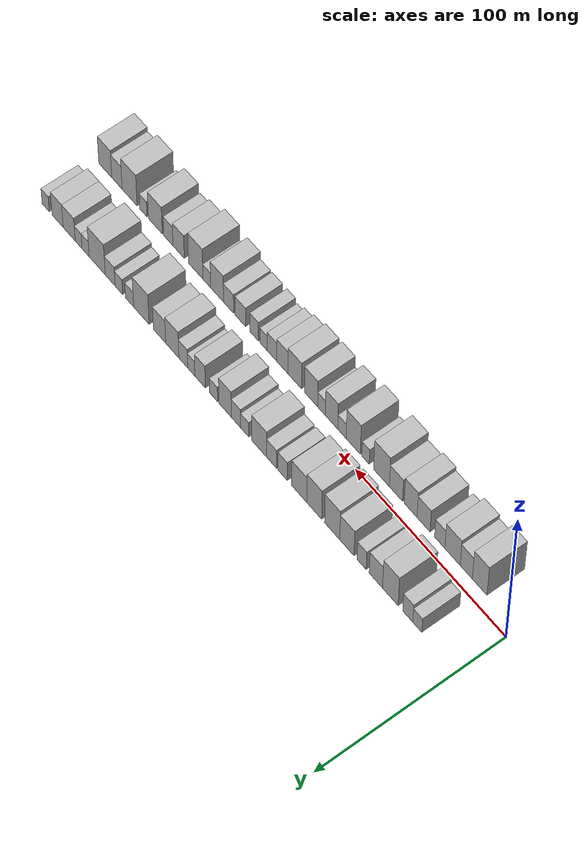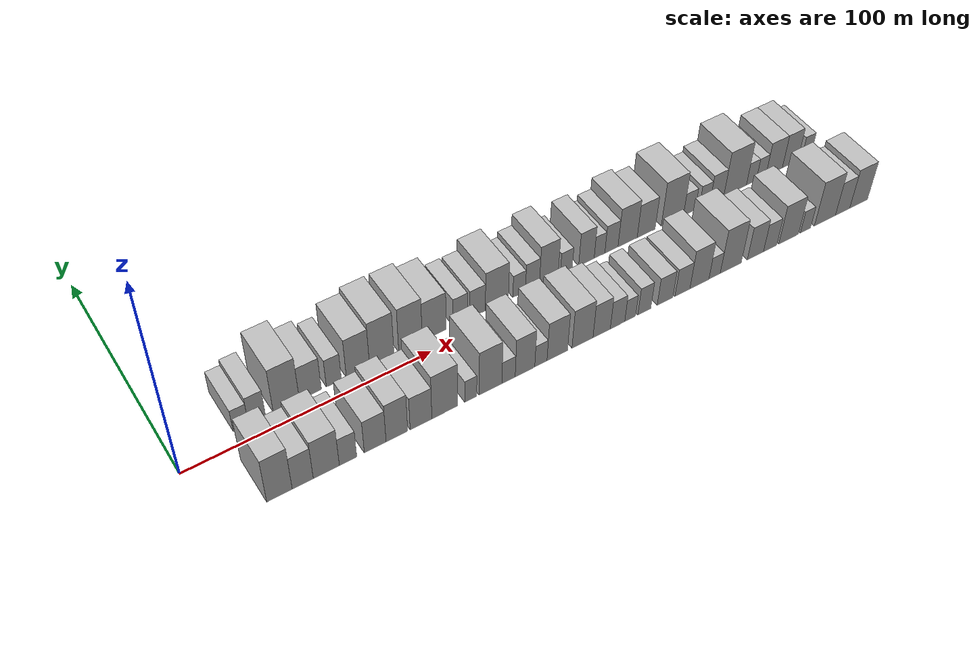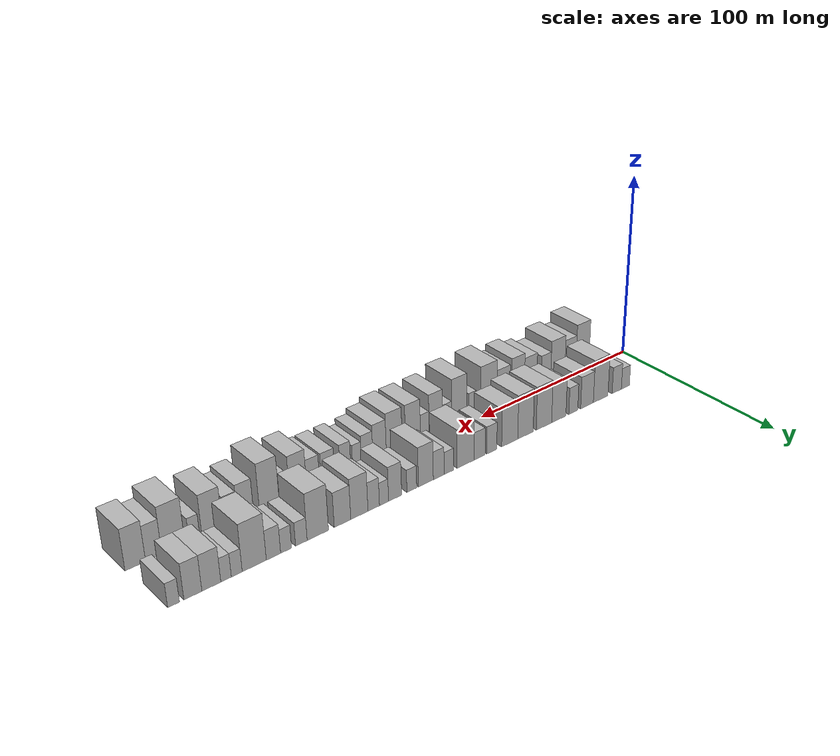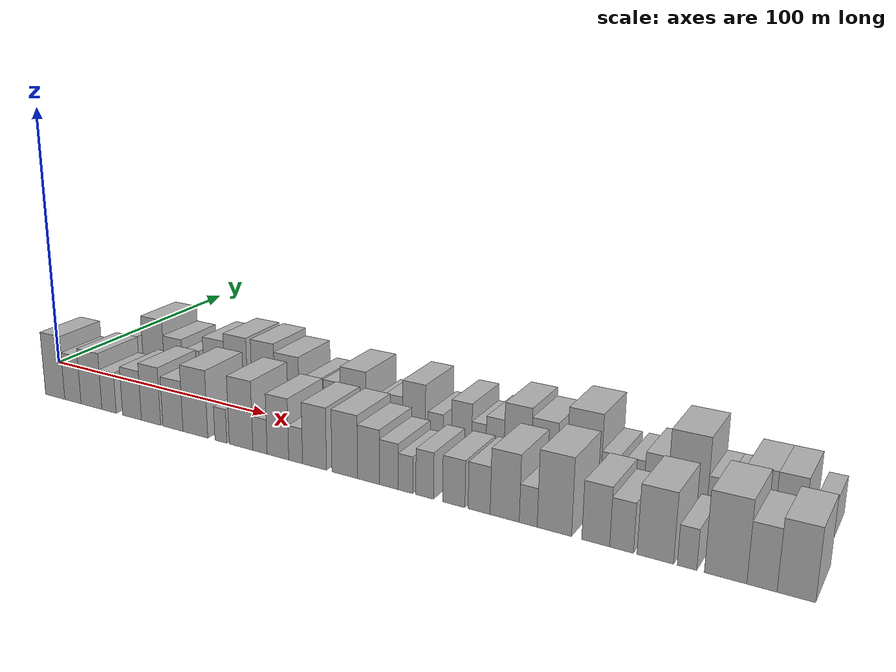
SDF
<sdf version="1.6">
 <world name="default">
  <scene>
   <sky><clouds><speed>12</speed></clouds></sky>
   <ambient>0.4 0.4 0.4 1</ambient>
   <background>0.7 0.7 0.7 1</background>
   <shadows>1</shadows>
  </scene>
  <gravity>0 0 -9.8066</gravity>
  <magnetic_field>6e-06 2.3e-05 -4.2e-05</magnetic_field>
  <physics default="0" name="default_physics" type="ode">
   <ode>
    <solver>
     <type>quick</type>
     <iters>10</iters>
     <sor>1.0</sor>
     <use_dynamic_moi_rescaling>0</use_dynamic_moi_rescaling>
    </solver>
    <constraints>
     <cfm>0</cfm>
     <erp>0.2</erp>
     <contact_max_correcting_vel>100</contact_max_correcting_vel>
     <contact_surface_layer>0.001</contact_surface_layer>
    </constraints>
   </ode>
   <max_step_size>0.004</max_step_size>
   <real_time_factor>1</real_time_factor>
   <real_time_update_rate>250</real_time_update_rate>
  </physics>
  <light name="sun" type="directional">
   <pose>0 0 10 0 0 0</pose>
   <diffuse>0.8 0.8 0.8 1</diffuse>
   <specular>0.2 0.2 0.2 1</specular>
   <attenuation>
    <range>1000</range>
    <constant>0.9</constant>
    <linear>0.01</linear>
    <quadratic>0.001</quadratic>
   </attenuation>
   <direction>-0.5 0.1 -0.9</direction>
  </light>
  <model name="building_1">
   <static>1</static>
   <pose>25.9544 16.0000 0 0.000000 0.000000 1.570796</pose>
   <link name="link">
    <pose>0 0 6.00 0 0 0</pose>
    <collision name="collision"><geometry><box><size>20.0000 5.9088 12.0000</size></box></geometry></collision>
    <visual name="visual">
     <cast_shadows>0</cast_shadows>
     <geometry><box><size>20.0000 5.9088 12.0000</size></box></geometry>
     <material>
      <script>
       <uri>model://HANNAS_wall/materials/scripts</uri>
       <uri>model://HANNAS_wall/materials/textures</uri>
       <name>vrc/HANNAS_wall</name>
      </script>
     </material>
    </visual>
   </link>
  </model>
  <model name="building_2">
   <static>1</static>
   <pose>32.2488 16.0000 0 0.000000 0.000000 1.570796</pose>
   <link name="link">
    <pose>0 0 7.50 0 0 0</pose>
    <collision name="collision"><geometry><box><size>20.0000 6.6799 15.0000</size></box></geometry></collision>
    <visual name="visual">
     <cast_shadows>0</cast_shadows>
     <geometry><box><size>20.0000 6.6799 15.0000</size></box></geometry>
     <material>
      <script>
       <uri>model://HANNAS_wall/materials/scripts</uri>
       <uri>model://HANNAS_wall/materials/textures</uri>
       <name>vrc/HANNAS_wall</name>
      </script>
     </material>
    </visual>
   </link>
  </model>
  <model name="building_3">
   <static>1</static>
   <pose>43.7842 16.0000 0 0.000000 0.000000 1.570796</pose>
   <link name="link">
    <pose>0 0 12.00 0 0 0</pose>
    <collision name="collision"><geometry><box><size>20.0000 10.3908 24.0000</size></box></geometry></collision>
    <visual name="visual">
     <cast_shadows>0</cast_shadows>
     <geometry><box><size>20.0000 10.3908 24.0000</size></box></geometry>
     <material>
      <script>
       <uri>model://HANNAS_wall/materials/scripts</uri>
       <uri>model://HANNAS_wall/materials/textures</uri>
       <name>vrc/HANNAS_wall</name>
      </script>
     </material>
    </visual>
   </link>
  </model>
  <model name="building_4">
   <static>1</static>
   <pose>53.4120 16.0000 0 0.000000 0.000000 1.570796</pose>
   <link name="link">
    <pose>0 0 9.00 0 0 0</pose>
    <collision name="collision"><geometry><box><size>20.0000 8.8648 18.0000</size></box></geometry></collision>
    <visual name="visual">
     <cast_shadows>0</cast_shadows>
     <geometry><box><size>20.0000 8.8648 18.0000</size></box></geometry>
     <material>
      <script>
       <uri>model://HANNAS_wall/materials/scripts</uri>
       <uri>model://HANNAS_wall/materials/textures</uri>
       <name>vrc/HANNAS_wall</name>
      </script>
     </material>
    </visual>
   </link>
  </model>
  <model name="building_5">
   <static>1</static>
   <pose>62.9199 16.0000 0 0.000000 0.000000 1.570796</pose>
   <link name="link">
    <pose>0 0 7.50 0 0 0</pose>
    <collision name="collision"><geometry><box><size>20.0000 6.1510 15.0000</size></box></geometry></collision>
    <visual name="visual">
     <cast_shadows>0</cast_shadows>
     <geometry><box><size>20.0000 6.1510 15.0000</size></box></geometry>
     <material>
      <script>
       <uri>model://HANNAS_wall/materials/scripts</uri>
       <uri>model://HANNAS_wall/materials/textures</uri>
       <name>vrc/HANNAS_wall</name>
      </script>
     </material>
    </visual>
   </link>
  </model>
  <model name="building_6">
   <static>1</static>
   <pose>72.8069 16.0000 0 0.000000 0.000000 1.570796</pose>
   <link name="link">
    <pose>0 0 10.50 0 0 0</pose>
    <collision name="collision"><geometry><box><size>20.0000 9.6230 21.0000</size></box></geometry></collision>
    <visual name="visual">
     <cast_shadows>0</cast_shadows>
     <geometry><box><size>20.0000 9.6230 21.0000</size></box></geometry>
     <material>
      <script>
       <uri>model://HANNAS_wall/materials/scripts</uri>
       <uri>model://HANNAS_wall/materials/textures</uri>
       <name>vrc/HANNAS_wall</name>
      </script>
     </material>
    </visual>
   </link>
  </model>
  <model name="building_7">
   <static>1</static>
   <pose>82.7275 16.0000 0 0.000000 0.000000 1.570796</pose>
   <link name="link">
    <pose>0 0 12.00 0 0 0</pose>
    <collision name="collision"><geometry><box><size>20.0000 10.2181 24.0000</size></box></geometry></collision>
    <visual name="visual">
     <cast_shadows>0</cast_shadows>
     <geometry><box><size>20.0000 10.2181 24.0000</size></box></geometry>
     <material>
      <script>
       <uri>model://HANNAS_wall/materials/scripts</uri>
       <uri>model://HANNAS_wall/materials/textures</uri>
       <name>vrc/HANNAS_wall</name>
      </script>
     </material>
    </visual>
   </link>
  </model>
  <model name="building_8">
   <static>1</static>
   <pose>94.8426 16.0000 0 0.000000 0.000000 1.570796</pose>
   <link name="link">
    <pose>0 0 12.00 0 0 0</pose>
    <collision name="collision"><geometry><box><size>20.0000 10.0121 24.0000</size></box></geometry></collision>
    <visual name="visual">
     <cast_shadows>0</cast_shadows>
     <geometry><box><size>20.0000 10.0121 24.0000</size></box></geometry>
     <material>
      <script>
       <uri>model://HANNAS_wall/materials/scripts</uri>
       <uri>model://HANNAS_wall/materials/textures</uri>
       <name>vrc/HANNAS_wall</name>
      </script>
     </material>
    </visual>
   </link>
  </model>
  <model name="building_9">
   <static>1</static>
   <pose>105.0213 16.0000 0 0.000000 0.000000 1.570796</pose>
   <link name="link">
    <pose>0 0 10.50 0 0 0</pose>
    <collision name="collision"><geometry><box><size>20.0000 10.3453 21.0000</size></box></geometry></collision>
    <visual name="visual">
     <cast_shadows>0</cast_shadows>
     <geometry><box><size>20.0000 10.3453 21.0000</size></box></geometry>
     <material>
      <script>
       <uri>model://HANNAS_wall/materials/scripts</uri>
       <uri>model://HANNAS_wall/materials/textures</uri>
       <name>vrc/HANNAS_wall</name>
      </script>
     </material>
    </visual>
   </link>
  </model>
  <model name="building_10">
   <static>1</static>
   <pose>116.3848 16.0000 0 0.000000 0.000000 1.570796</pose>
   <link name="link">
    <pose>0 0 7.50 0 0 0</pose>
    <collision name="collision"><geometry><box><size>20.0000 6.3818 15.0000</size></box></geometry></collision>
    <visual name="visual">
     <cast_shadows>0</cast_shadows>
     <geometry><box><size>20.0000 6.3818 15.0000</size></box></geometry>
     <material>
      <script>
       <uri>model://HANNAS_wall/materials/scripts</uri>
       <uri>model://HANNAS_wall/materials/textures</uri>
       <name>vrc/HANNAS_wall</name>
      </script>
     </material>
    </visual>
   </link>
  </model>
  <model name="building_11">
   <static>1</static>
   <pose>123.9703 16.0000 0 0.000000 0.000000 1.570796</pose>
   <link name="link">
    <pose>0 0 7.50 0 0 0</pose>
    <collision name="collision"><geometry><box><size>20.0000 6.7891 15.0000</size></box></geometry></collision>
    <visual name="visual">
     <cast_shadows>0</cast_shadows>
     <geometry><box><size>20.0000 6.7891 15.0000</size></box></geometry>
     <material>
      <script>
       <uri>model://HANNAS_wall/materials/scripts</uri>
       <uri>model://HANNAS_wall/materials/textures</uri>
       <name>vrc/HANNAS_wall</name>
      </script>
     </material>
    </visual>
   </link>
  </model>
  <model name="building_12">
   <static>1</static>
   <pose>132.5259 16.0000 0 0.000000 0.000000 1.570796</pose>
   <link name="link">
    <pose>0 0 10.50 0 0 0</pose>
    <collision name="collision"><geometry><box><size>20.0000 10.3223 21.0000</size></box></geometry></collision>
    <visual name="visual">
     <cast_shadows>0</cast_shadows>
     <geometry><box><size>20.0000 10.3223 21.0000</size></box></geometry>
     <material>
      <script>
       <uri>model://HANNAS_wall/materials/scripts</uri>
       <uri>model://HANNAS_wall/materials/textures</uri>
       <name>vrc/HANNAS_wall</name>
      </script>
     </material>
    </visual>
   </link>
  </model>
  <model name="building_13">
   <static>1</static>
   <pose>142.5351 16.0000 0 0.000000 0.000000 1.570796</pose>
   <link name="link">
    <pose>0 0 6.00 0 0 0</pose>
    <collision name="collision"><geometry><box><size>20.0000 5.6959 12.0000</size></box></geometry></collision>
    <visual name="visual">
     <cast_shadows>0</cast_shadows>
     <geometry><box><size>20.0000 5.6959 12.0000</size></box></geometry>
     <material>
      <script>
       <uri>model://HANNAS_wall/materials/scripts</uri>
       <uri>model://HANNAS_wall/materials/textures</uri>
       <name>vrc/HANNAS_wall</name>
      </script>
     </material>
    </visual>
   </link>
  </model>
  <model name="building_14">
   <static>1</static>
   <pose>148.5856 16.0000 0 0.000000 0.000000 1.570796</pose>
   <link name="link">
    <pose>0 0 7.50 0 0 0</pose>
    <collision name="collision"><geometry><box><size>20.0000 6.4052 15.0000</size></box></geometry></collision>
    <visual name="visual">
     <cast_shadows>0</cast_shadows>
     <geometry><box><size>20.0000 6.4052 15.0000</size></box></geometry>
     <material>
      <script>
       <uri>model://HANNAS_wall/materials/scripts</uri>
       <uri>model://HANNAS_wall/materials/textures</uri>
       <name>vrc/HANNAS_wall</name>
      </script>
     </material>
    </visual>
   </link>
  </model>
  <model name="building_15">
   <static>1</static>
   <pose>156.0996 16.0000 0 0.000000 0.000000 1.570796</pose>
   <link name="link">
    <pose>0 0 10.50 0 0 0</pose>
    <collision name="collision"><geometry><box><size>20.0000 8.6228 21.0000</size></box></geometry></collision>
    <visual name="visual">
     <cast_shadows>0</cast_shadows>
     <geometry><box><size>20.0000 8.6228 21.0000</size></box></geometry>
     <material>
      <script>
       <uri>model://HANNAS_wall/materials/scripts</uri>
       <uri>model://HANNAS_wall/materials/textures</uri>
       <name>vrc/HANNAS_wall</name>
      </script>
     </material>
    </visual>
   </link>
  </model>
  <model name="building_16">
   <static>1</static>
   <pose>164.2085 16.0000 0 0.000000 0.000000 1.570796</pose>
   <link name="link">
    <pose>0 0 6.00 0 0 0</pose>
    <collision name="collision"><geometry><box><size>20.0000 5.5949 12.0000</size></box></geometry></collision>
    <visual name="visual">
     <cast_shadows>0</cast_shadows>
     <geometry><box><size>20.0000 5.5949 12.0000</size></box></geometry>
     <material>
      <script>
       <uri>model://HANNAS_wall/materials/scripts</uri>
       <uri>model://HANNAS_wall/materials/textures</uri>
       <name>vrc/HANNAS_wall</name>
      </script>
     </material>
    </visual>
   </link>
  </model>
  <model name="building_17">
   <static>1</static>
   <pose>173.6710 16.0000 0 0.000000 0.000000 1.570796</pose>
   <link name="link">
    <pose>0 0 9.00 0 0 0</pose>
    <collision name="collision"><geometry><box><size>20.0000 7.3300 18.0000</size></box></geometry></collision>
    <visual name="visual">
     <cast_shadows>0</cast_shadows>
     <geometry><box><size>20.0000 7.3300 18.0000</size></box></geometry>
     <material>
      <script>
       <uri>model://HANNAS_wall/materials/scripts</uri>
       <uri>model://HANNAS_wall/materials/textures</uri>
       <name>vrc/HANNAS_wall</name>
      </script>
     </material>
    </visual>
   </link>
  </model>
  <model name="building_18">
   <static>1</static>
   <pose>179.8715 16.0000 0 0.000000 0.000000 1.570796</pose>
   <link name="link">
    <pose>0 0 6.00 0 0 0</pose>
    <collision name="collision"><geometry><box><size>20.0000 5.0711 12.0000</size></box></geometry></collision>
    <visual name="visual">
     <cast_shadows>0</cast_shadows>
     <geometry><box><size>20.0000 5.0711 12.0000</size></box></geometry>
     <material>
      <script>
       <uri>model://HANNAS_wall/materials/scripts</uri>
       <uri>model://HANNAS_wall/materials/textures</uri>
       <name>vrc/HANNAS_wall</name>
      </script>
     </material>
    </visual>
   </link>
  </model>
  <model name="building_19">
   <static>1</static>
   <pose>185.5619 16.0000 0 0.000000 0.000000 1.570796</pose>
   <link name="link">
    <pose>0 0 7.50 0 0 0</pose>
    <collision name="collision"><geometry><box><size>20.0000 6.3096 15.0000</size></box></geometry></collision>
    <visual name="visual">
     <cast_shadows>0</cast_shadows>
     <geometry><box><size>20.0000 6.3096 15.0000</size></box></geometry>
     <material>
      <script>
       <uri>model://HANNAS_wall/materials/scripts</uri>
       <uri>model://HANNAS_wall/materials/textures</uri>
       <name>vrc/HANNAS_wall</name>
      </script>
     </material>
    </visual>
   </link>
  </model>
  <model name="building_20">
   <static>1</static>
   <pose>193.3620 16.0000 0 0.000000 0.000000 1.570796</pose>
   <link name="link">
    <pose>0 0 10.50 0 0 0</pose>
    <collision name="collision"><geometry><box><size>20.0000 9.2907 21.0000</size></box></geometry></collision>
    <visual name="visual">
     <cast_shadows>0</cast_shadows>
     <geometry><box><size>20.0000 9.2907 21.0000</size></box></geometry>
     <material>
      <script>
       <uri>model://HANNAS_wall/materials/scripts</uri>
       <uri>model://HANNAS_wall/materials/textures</uri>
       <name>vrc/HANNAS_wall</name>
      </script>
     </material>
    </visual>
   </link>
  </model>
  <model name="building_21">
   <static>1</static>
   <pose>202.4040 16.0000 0 0.000000 0.000000 1.570796</pose>
   <link name="link">
    <pose>0 0 9.00 0 0 0</pose>
    <collision name="collision"><geometry><box><size>20.0000 8.7932 18.0000</size></box></geometry></collision>
    <visual name="visual">
     <cast_shadows>0</cast_shadows>
     <geometry><box><size>20.0000 8.7932 18.0000</size></box></geometry>
     <material>
      <script>
       <uri>model://HANNAS_wall/materials/scripts</uri>
       <uri>model://HANNAS_wall/materials/textures</uri>
       <name>vrc/HANNAS_wall</name>
      </script>
     </material>
    </visual>
   </link>
  </model>
  <model name="building_22">
   <static>1</static>
   <pose>215.3297 16.0000 0 0.000000 0.000000 1.570796</pose>
   <link name="link">
    <pose>0 0 12.00 0 0 0</pose>
    <collision name="collision"><geometry><box><size>20.0000 11.0581 24.0000</size></box></geometry></collision>
    <visual name="visual">
     <cast_shadows>0</cast_shadows>
     <geometry><box><size>20.0000 11.0581 24.0000</size></box></geometry>
     <material>
      <script>
       <uri>model://HANNAS_wall/materials/scripts</uri>
       <uri>model://HANNAS_wall/materials/textures</uri>
       <name>vrc/HANNAS_wall</name>
      </script>
     </material>
    </visual>
   </link>
  </model>
  <model name="building_23">
   <static>1</static>
   <pose>223.8093 16.0000 0 0.000000 0.000000 1.570796</pose>
   <link name="link">
    <pose>0 0 6.00 0 0 0</pose>
    <collision name="collision"><geometry><box><size>20.0000 5.9010 12.0000</size></box></geometry></collision>
    <visual name="visual">
     <cast_shadows>0</cast_shadows>
     <geometry><box><size>20.0000 5.9010 12.0000</size></box></geometry>
     <material>
      <script>
       <uri>model://HANNAS_wall/materials/scripts</uri>
       <uri>model://HANNAS_wall/materials/textures</uri>
       <name>vrc/HANNAS_wall</name>
      </script>
     </material>
    </visual>
   </link>
  </model>
  <model name="building_24">
   <static>1</static>
   <pose>231.5035 16.0000 0 0.000000 0.000000 1.570796</pose>
   <link name="link">
    <pose>0 0 6.00 0 0 0</pose>
    <collision name="collision"><geometry><box><size>20.0000 5.4875 12.0000</size></box></geometry></collision>
    <visual name="visual">
     <cast_shadows>0</cast_shadows>
     <geometry><box><size>20.0000 5.4875 12.0000</size></box></geometry>
     <material>
      <script>
       <uri>model://HANNAS_wall/materials/scripts</uri>
       <uri>model://HANNAS_wall/materials/textures</uri>
       <name>vrc/HANNAS_wall</name>
      </script>
     </material>
    </visual>
   </link>
  </model>
  <model name="building_25">
   <static>1</static>
   <pose>237.7894 16.0000 0 0.000000 0.000000 1.570796</pose>
   <link name="link">
    <pose>0 0 7.50 0 0 0</pose>
    <collision name="collision"><geometry><box><size>20.0000 7.0842 15.0000</size></box></geometry></collision>
    <visual name="visual">
     <cast_shadows>0</cast_shadows>
     <geometry><box><size>20.0000 7.0842 15.0000</size></box></geometry>
     <material>
      <script>
       <uri>model://HANNAS_wall/materials/scripts</uri>
       <uri>model://HANNAS_wall/materials/textures</uri>
       <name>vrc/HANNAS_wall</name>
      </script>
     </material>
    </visual>
   </link>
  </model>
  <model name="building_26">
   <static>1</static>
   <pose>247.1757 16.0000 0 0.000000 0.000000 1.570796</pose>
   <link name="link">
    <pose>0 0 12.00 0 0 0</pose>
    <collision name="collision"><geometry><box><size>20.0000 11.6884 24.0000</size></box></geometry></collision>
    <visual name="visual">
     <cast_shadows>0</cast_shadows>
     <geometry><box><size>20.0000 11.6884 24.0000</size></box></geometry>
     <material>
      <script>
       <uri>model://HANNAS_wall/materials/scripts</uri>
       <uri>model://HANNAS_wall/materials/textures</uri>
       <name>vrc/HANNAS_wall</name>
      </script>
     </material>
    </visual>
   </link>
  </model>
  <model name="building_27">
   <static>1</static>
   <pose>255.6017 16.0000 0 0.000000 0.000000 1.570796</pose>
   <link name="link">
    <pose>0 0 6.00 0 0 0</pose>
    <collision name="collision"><geometry><box><size>20.0000 5.1636 12.0000</size></box></geometry></collision>
    <visual name="visual">
     <cast_shadows>0</cast_shadows>
     <geometry><box><size>20.0000 5.1636 12.0000</size></box></geometry>
     <material>
      <script>
       <uri>model://HANNAS_wall/materials/scripts</uri>
       <uri>model://HANNAS_wall/materials/textures</uri>
       <name>vrc/HANNAS_wall</name>
      </script>
     </material>
    </visual>
   </link>
  </model>
  <model name="building_28">
   <static>1</static>
   <pose>260.6690 16.0000 0 0.000000 0.000000 1.570796</pose>
   <link name="link">
    <pose>0 0 6.00 0 0 0</pose>
    <collision name="collision"><geometry><box><size>20.0000 4.9711 12.0000</size></box></geometry></collision>
    <visual name="visual">
     <cast_shadows>0</cast_shadows>
     <geometry><box><size>20.0000 4.9711 12.0000</size></box></geometry>
     <material>
      <script>
       <uri>model://HANNAS_wall/materials/scripts</uri>
       <uri>model://HANNAS_wall/materials/textures</uri>
       <name>vrc/HANNAS_wall</name>
      </script>
     </material>
    </visual>
   </link>
  </model>
  <model name="building_29">
   <static>1</static>
   <pose>267.5593 16.0000 0 0.000000 0.000000 1.570796</pose>
   <link name="link">
    <pose>0 0 9.00 0 0 0</pose>
    <collision name="collision"><geometry><box><size>20.0000 8.8094 18.0000</size></box></geometry></collision>
    <visual name="visual">
     <cast_shadows>0</cast_shadows>
     <geometry><box><size>20.0000 8.8094 18.0000</size></box></geometry>
     <material>
      <script>
       <uri>model://HANNAS_wall/materials/scripts</uri>
       <uri>model://HANNAS_wall/materials/textures</uri>
       <name>vrc/HANNAS_wall</name>
      </script>
     </material>
    </visual>
   </link>
  </model>
  <model name="building_30">
   <static>1</static>
   <pose>276.0621 16.0000 0 0.000000 0.000000 1.570796</pose>
   <link name="link">
    <pose>0 0 9.00 0 0 0</pose>
    <collision name="collision"><geometry><box><size>20.0000 8.1962 18.0000</size></box></geometry></collision>
    <visual name="visual">
     <cast_shadows>0</cast_shadows>
     <geometry><box><size>20.0000 8.1962 18.0000</size></box></geometry>
     <material>
      <script>
       <uri>model://HANNAS_wall/materials/scripts</uri>
       <uri>model://HANNAS_wall/materials/textures</uri>
       <name>vrc/HANNAS_wall</name>
      </script>
     </material>
    </visual>
   </link>
  </model>
  <model name="building_31">
   <static>1</static>
   <pose>284.8099 16.0000 0 0.000000 0.000000 1.570796</pose>
   <link name="link">
    <pose>0 0 6.00 0 0 0</pose>
    <collision name="collision"><geometry><box><size>20.0000 5.2995 12.0000</size></box></geometry></collision>
    <visual name="visual">
     <cast_shadows>0</cast_shadows>
     <geometry><box><size>20.0000 5.2995 12.0000</size></box></geometry>
     <material>
      <script>
       <uri>model://HANNAS_wall/materials/scripts</uri>
       <uri>model://HANNAS_wall/materials/textures</uri>
       <name>vrc/HANNAS_wall</name>
      </script>
     </material>
    </visual>
   </link>
  </model>
  <model name="building_32">
   <static>1</static>
   <pose>24.8253 -16.0000 0 0.000000 0.000000 1.570796</pose>
   <link name="link">
    <pose>0 0 12.00 0 0 0</pose>
    <collision name="collision"><geometry><box><size>20.0000 9.6506 24.0000</size></box></geometry></collision>
    <visual name="visual">
     <cast_shadows>0</cast_shadows>
     <geometry><box><size>20.0000 9.6506 24.0000</size></box></geometry>
     <material>
      <script>
       <uri>model://HANNAS_wall/materials/scripts</uri>
       <uri>model://HANNAS_wall/materials/textures</uri>
       <name>vrc/HANNAS_wall</name>
      </script>
     </material>
    </visual>
   </link>
  </model>
  <model name="building_33">
   <static>1</static>
   <pose>33.6735 -16.0000 0 0.000000 0.000000 1.570796</pose>
   <link name="link">
    <pose>0 0 9.00 0 0 0</pose>
    <collision name="collision"><geometry><box><size>20.0000 8.0458 18.0000</size></box></geometry></collision>
    <visual name="visual">
     <cast_shadows>0</cast_shadows>
     <geometry><box><size>20.0000 8.0458 18.0000</size></box></geometry>
     <material>
      <script>
       <uri>model://HANNAS_wall/materials/scripts</uri>
       <uri>model://HANNAS_wall/materials/textures</uri>
       <name>vrc/HANNAS_wall</name>
      </script>
     </material>
    </visual>
   </link>
  </model>
  <model name="building_34">
   <static>1</static>
   <pose>42.7346 -16.0000 0 0.000000 0.000000 1.570796</pose>
   <link name="link">
    <pose>0 0 10.50 0 0 0</pose>
    <collision name="collision"><geometry><box><size>20.0000 10.0762 21.0000</size></box></geometry></collision>
    <visual name="visual">
     <cast_shadows>0</cast_shadows>
     <geometry><box><size>20.0000 10.0762 21.0000</size></box></geometry>
     <material>
      <script>
       <uri>model://HANNAS_wall/materials/scripts</uri>
       <uri>model://HANNAS_wall/materials/textures</uri>
       <name>vrc/HANNAS_wall</name>
      </script>
     </material>
    </visual>
   </link>
  </model>
  <model name="building_35">
   <static>1</static>
   <pose>51.1768 -16.0000 0 0.000000 0.000000 1.570796</pose>
   <link name="link">
    <pose>0 0 7.50 0 0 0</pose>
    <collision name="collision"><geometry><box><size>20.0000 6.8083 15.0000</size></box></geometry></collision>
    <visual name="visual">
     <cast_shadows>0</cast_shadows>
     <geometry><box><size>20.0000 6.8083 15.0000</size></box></geometry>
     <material>
      <script>
       <uri>model://HANNAS_wall/materials/scripts</uri>
       <uri>model://HANNAS_wall/materials/textures</uri>
       <name>vrc/HANNAS_wall</name>
      </script>
     </material>
    </visual>
   </link>
  </model>
  <model name="building_36">
   <static>1</static>
   <pose>61.9040 -16.0000 0 0.000000 0.000000 1.570796</pose>
   <link name="link">
    <pose>0 0 9.00 0 0 0</pose>
    <collision name="collision"><geometry><box><size>20.0000 8.6461 18.0000</size></box></geometry></collision>
    <visual name="visual">
     <cast_shadows>0</cast_shadows>
     <geometry><box><size>20.0000 8.6461 18.0000</size></box></geometry>
     <material>
      <script>
       <uri>model://HANNAS_wall/materials/scripts</uri>
       <uri>model://HANNAS_wall/materials/textures</uri>
       <name>vrc/HANNAS_wall</name>
      </script>
     </material>
    </visual>
   </link>
  </model>
  <model name="building_37">
   <static>1</static>
   <pose>70.5800 -16.0000 0 0.000000 0.000000 1.570796</pose>
   <link name="link">
    <pose>0 0 10.50 0 0 0</pose>
    <collision name="collision"><geometry><box><size>20.0000 8.7058 21.0000</size></box></geometry></collision>
    <visual name="visual">
     <cast_shadows>0</cast_shadows>
     <geometry><box><size>20.0000 8.7058 21.0000</size></box></geometry>
     <material>
      <script>
       <uri>model://HANNAS_wall/materials/scripts</uri>
       <uri>model://HANNAS_wall/materials/textures</uri>
       <name>vrc/HANNAS_wall</name>
      </script>
     </material>
    </visual>
   </link>
  </model>
  <model name="building_38">
   <static>1</static>
   <pose>80.3602 -16.0000 0 0.000000 0.000000 1.570796</pose>
   <link name="link">
    <pose>0 0 9.00 0 0 0</pose>
    <collision name="collision"><geometry><box><size>20.0000 8.8546 18.0000</size></box></geometry></collision>
    <visual name="visual">
     <cast_shadows>0</cast_shadows>
     <geometry><box><size>20.0000 8.8546 18.0000</size></box></geometry>
     <material>
      <script>
       <uri>model://HANNAS_wall/materials/scripts</uri>
       <uri>model://HANNAS_wall/materials/textures</uri>
       <name>vrc/HANNAS_wall</name>
      </script>
     </material>
    </visual>
   </link>
  </model>
  <model name="building_39">
   <static>1</static>
   <pose>90.1226 -16.0000 0 0.000000 0.000000 1.570796</pose>
   <link name="link">
    <pose>0 0 12.00 0 0 0</pose>
    <collision name="collision"><geometry><box><size>20.0000 10.6703 24.0000</size></box></geometry></collision>
    <visual name="visual">
     <cast_shadows>0</cast_shadows>
     <geometry><box><size>20.0000 10.6703 24.0000</size></box></geometry>
     <material>
      <script>
       <uri>model://HANNAS_wall/materials/scripts</uri>
       <uri>model://HANNAS_wall/materials/textures</uri>
       <name>vrc/HANNAS_wall</name>
      </script>
     </material>
    </visual>
   </link>
  </model>
  <model name="building_40">
   <static>1</static>
   <pose>100.9520 -16.0000 0 0.000000 0.000000 1.570796</pose>
   <link name="link">
    <pose>0 0 6.00 0 0 0</pose>
    <collision name="collision"><geometry><box><size>20.0000 4.9884 12.0000</size></box></geometry></collision>
    <visual name="visual">
     <cast_shadows>0</cast_shadows>
     <geometry><box><size>20.0000 4.9884 12.0000</size></box></geometry>
     <material>
      <script>
       <uri>model://HANNAS_wall/materials/scripts</uri>
       <uri>model://HANNAS_wall/materials/textures</uri>
       <name>vrc/HANNAS_wall</name>
      </script>
     </material>
    </visual>
   </link>
  </model>
  <model name="building_41">
   <static>1</static>
   <pose>109.2826 -16.0000 0 0.000000 0.000000 1.570796</pose>
   <link name="link">
    <pose>0 0 12.00 0 0 0</pose>
    <collision name="collision"><geometry><box><size>20.0000 9.6730 24.0000</size></box></geometry></collision>
    <visual name="visual">
     <cast_shadows>0</cast_shadows>
     <geometry><box><size>20.0000 9.6730 24.0000</size></box></geometry>
     <material>
      <script>
       <uri>model://HANNAS_wall/materials/scripts</uri>
       <uri>model://HANNAS_wall/materials/textures</uri>
       <name>vrc/HANNAS_wall</name>
      </script>
     </material>
    </visual>
   </link>
  </model>
  <model name="building_42">
   <static>1</static>
   <pose>116.9837 -16.0000 0 0.000000 0.000000 1.570796</pose>
   <link name="link">
    <pose>0 0 6.00 0 0 0</pose>
    <collision name="collision"><geometry><box><size>20.0000 5.7291 12.0000</size></box></geometry></collision>
    <visual name="visual">
     <cast_shadows>0</cast_shadows>
     <geometry><box><size>20.0000 5.7291 12.0000</size></box></geometry>
     <material>
      <script>
       <uri>model://HANNAS_wall/materials/scripts</uri>
       <uri>model://HANNAS_wall/materials/textures</uri>
       <name>vrc/HANNAS_wall</name>
      </script>
     </material>
    </visual>
   </link>
  </model>
  <model name="building_43">
   <static>1</static>
   <pose>124.0921 -16.0000 0 0.000000 0.000000 1.570796</pose>
   <link name="link">
    <pose>0 0 10.50 0 0 0</pose>
    <collision name="collision"><geometry><box><size>20.0000 8.4878 21.0000</size></box></geometry></collision>
    <visual name="visual">
     <cast_shadows>0</cast_shadows>
     <geometry><box><size>20.0000 8.4878 21.0000</size></box></geometry>
     <material>
      <script>
       <uri>model://HANNAS_wall/materials/scripts</uri>
       <uri>model://HANNAS_wall/materials/textures</uri>
       <name>vrc/HANNAS_wall</name>
      </script>
     </material>
    </visual>
   </link>
  </model>
  <model name="building_44">
   <static>1</static>
   <pose>131.0113 -16.0000 0 0.000000 0.000000 1.570796</pose>
   <link name="link">
    <pose>0 0 6.00 0 0 0</pose>
    <collision name="collision"><geometry><box><size>20.0000 5.3506 12.0000</size></box></geometry></collision>
    <visual name="visual">
     <cast_shadows>0</cast_shadows>
     <geometry><box><size>20.0000 5.3506 12.0000</size></box></geometry>
     <material>
      <script>
       <uri>model://HANNAS_wall/materials/scripts</uri>
       <uri>model://HANNAS_wall/materials/textures</uri>
       <name>vrc/HANNAS_wall</name>
      </script>
     </material>
    </visual>
   </link>
  </model>
  <model name="building_45">
   <static>1</static>
   <pose>138.2235 -16.0000 0 0.000000 0.000000 1.570796</pose>
   <link name="link">
    <pose>0 0 10.50 0 0 0</pose>
    <collision name="collision"><geometry><box><size>20.0000 9.0737 21.0000</size></box></geometry></collision>
    <visual name="visual">
     <cast_shadows>0</cast_shadows>
     <geometry><box><size>20.0000 9.0737 21.0000</size></box></geometry>
     <material>
      <script>
       <uri>model://HANNAS_wall/materials/scripts</uri>
       <uri>model://HANNAS_wall/materials/textures</uri>
       <name>vrc/HANNAS_wall</name>
      </script>
     </material>
    </visual>
   </link>
  </model>
  <model name="building_46">
   <static>1</static>
   <pose>149.4765 -16.0000 0 0.000000 0.000000 1.570796</pose>
   <link name="link">
    <pose>0 0 10.50 0 0 0</pose>
    <collision name="collision"><geometry><box><size>20.0000 9.4323 21.0000</size></box></geometry></collision>
    <visual name="visual">
     <cast_shadows>0</cast_shadows>
     <geometry><box><size>20.0000 9.4323 21.0000</size></box></geometry>
     <material>
      <script>
       <uri>model://HANNAS_wall/materials/scripts</uri>
       <uri>model://HANNAS_wall/materials/textures</uri>
       <name>vrc/HANNAS_wall</name>
      </script>
     </material>
    </visual>
   </link>
  </model>
  <model name="building_47">
   <static>1</static>
   <pose>158.1193 -16.0000 0 0.000000 0.000000 1.570796</pose>
   <link name="link">
    <pose>0 0 9.00 0 0 0</pose>
    <collision name="collision"><geometry><box><size>20.0000 7.8533 18.0000</size></box></geometry></collision>
    <visual name="visual">
     <cast_shadows>0</cast_shadows>
     <geometry><box><size>20.0000 7.8533 18.0000</size></box></geometry>
     <material>
      <script>
       <uri>model://HANNAS_wall/materials/scripts</uri>
       <uri>model://HANNAS_wall/materials/textures</uri>
       <name>vrc/HANNAS_wall</name>
      </script>
     </material>
    </visual>
   </link>
  </model>
  <model name="building_48">
   <static>1</static>
   <pose>165.3548 -16.0000 0 0.000000 0.000000 1.570796</pose>
   <link name="link">
    <pose>0 0 7.50 0 0 0</pose>
    <collision name="collision"><geometry><box><size>20.0000 6.6178 15.0000</size></box></geometry></collision>
    <visual name="visual">
     <cast_shadows>0</cast_shadows>
     <geometry><box><size>20.0000 6.6178 15.0000</size></box></geometry>
     <material>
      <script>
       <uri>model://HANNAS_wall/materials/scripts</uri>
       <uri>model://HANNAS_wall/materials/textures</uri>
       <name>vrc/HANNAS_wall</name>
      </script>
     </material>
    </visual>
   </link>
  </model>
  <model name="building_49">
   <static>1</static>
   <pose>171.1780 -16.0000 0 0.000000 0.000000 1.570796</pose>
   <link name="link">
    <pose>0 0 6.00 0 0 0</pose>
    <collision name="collision"><geometry><box><size>20.0000 5.0285 12.0000</size></box></geometry></collision>
    <visual name="visual">
     <cast_shadows>0</cast_shadows>
     <geometry><box><size>20.0000 5.0285 12.0000</size></box></geometry>
     <material>
      <script>
       <uri>model://HANNAS_wall/materials/scripts</uri>
       <uri>model://HANNAS_wall/materials/textures</uri>
       <name>vrc/HANNAS_wall</name>
      </script>
     </material>
    </visual>
   </link>
  </model>
  <model name="building_50">
   <static>1</static>
   <pose>177.7196 -16.0000 0 0.000000 0.000000 1.570796</pose>
   <link name="link">
    <pose>0 0 7.50 0 0 0</pose>
    <collision name="collision"><geometry><box><size>20.0000 6.0546 15.0000</size></box></geometry></collision>
    <visual name="visual">
     <cast_shadows>0</cast_shadows>
     <geometry><box><size>20.0000 6.0546 15.0000</size></box></geometry>
     <material>
      <script>
       <uri>model://HANNAS_wall/materials/scripts</uri>
       <uri>model://HANNAS_wall/materials/textures</uri>
       <name>vrc/HANNAS_wall</name>
      </script>
     </material>
    </visual>
   </link>
  </model>
  <model name="building_51">
   <static>1</static>
   <pose>187.4385 -16.0000 0 0.000000 0.000000 1.570796</pose>
   <link name="link">
    <pose>0 0 7.50 0 0 0</pose>
    <collision name="collision"><geometry><box><size>20.0000 7.3833 15.0000</size></box></geometry></collision>
    <visual name="visual">
     <cast_shadows>0</cast_shadows>
     <geometry><box><size>20.0000 7.3833 15.0000</size></box></geometry>
     <material>
      <script>
       <uri>model://HANNAS_wall/materials/scripts</uri>
       <uri>model://HANNAS_wall/materials/textures</uri>
       <name>vrc/HANNAS_wall</name>
      </script>
     </material>
    </visual>
   </link>
  </model>
  <model name="building_52">
   <static>1</static>
   <pose>195.6969 -16.0000 0 0.000000 0.000000 1.570796</pose>
   <link name="link">
    <pose>0 0 7.50 0 0 0</pose>
    <collision name="collision"><geometry><box><size>20.0000 7.1335 15.0000</size></box></geometry></collision>
    <visual name="visual">
     <cast_shadows>0</cast_shadows>
     <geometry><box><size>20.0000 7.1335 15.0000</size></box></geometry>
     <material>
      <script>
       <uri>model://HANNAS_wall/materials/scripts</uri>
       <uri>model://HANNAS_wall/materials/textures</uri>
       <name>vrc/HANNAS_wall</name>
      </script>
     </material>
    </visual>
   </link>
  </model>
  <model name="building_53">
   <static>1</static>
   <pose>203.8456 -16.0000 0 0.000000 0.000000 1.570796</pose>
   <link name="link">
    <pose>0 0 10.50 0 0 0</pose>
    <collision name="collision"><geometry><box><size>20.0000 9.1638 21.0000</size></box></geometry></collision>
    <visual name="visual">
     <cast_shadows>0</cast_shadows>
     <geometry><box><size>20.0000 9.1638 21.0000</size></box></geometry>
     <material>
      <script>
       <uri>model://HANNAS_wall/materials/scripts</uri>
       <uri>model://HANNAS_wall/materials/textures</uri>
       <name>vrc/HANNAS_wall</name>
      </script>
     </material>
    </visual>
   </link>
  </model>
  <model name="building_54">
   <static>1</static>
   <pose>211.1788 -16.0000 0 0.000000 0.000000 1.570796</pose>
   <link name="link">
    <pose>0 0 6.00 0 0 0</pose>
    <collision name="collision"><geometry><box><size>20.0000 5.5026 12.0000</size></box></geometry></collision>
    <visual name="visual">
     <cast_shadows>0</cast_shadows>
     <geometry><box><size>20.0000 5.5026 12.0000</size></box></geometry>
     <material>
      <script>
       <uri>model://HANNAS_wall/materials/scripts</uri>
       <uri>model://HANNAS_wall/materials/textures</uri>
       <name>vrc/HANNAS_wall</name>
      </script>
     </material>
    </visual>
   </link>
  </model>
  <model name="building_55">
   <static>1</static>
   <pose>219.0951 -16.0000 0 0.000000 0.000000 1.570796</pose>
   <link name="link">
    <pose>0 0 12.00 0 0 0</pose>
    <collision name="collision"><geometry><box><size>20.0000 10.3301 24.0000</size></box></geometry></collision>
    <visual name="visual">
     <cast_shadows>0</cast_shadows>
     <geometry><box><size>20.0000 10.3301 24.0000</size></box></geometry>
     <material>
      <script>
       <uri>model://HANNAS_wall/materials/scripts</uri>
       <uri>model://HANNAS_wall/materials/textures</uri>
       <name>vrc/HANNAS_wall</name>
      </script>
     </material>
    </visual>
   </link>
  </model>
  <model name="building_56">
   <static>1</static>
   <pose>231.3069 -16.0000 0 0.000000 0.000000 1.570796</pose>
   <link name="link">
    <pose>0 0 9.00 0 0 0</pose>
    <collision name="collision"><geometry><box><size>20.0000 8.0935 18.0000</size></box></geometry></collision>
    <visual name="visual">
     <cast_shadows>0</cast_shadows>
     <geometry><box><size>20.0000 8.0935 18.0000</size></box></geometry>
     <material>
      <script>
       <uri>model://HANNAS_wall/materials/scripts</uri>
       <uri>model://HANNAS_wall/materials/textures</uri>
       <name>vrc/HANNAS_wall</name>
      </script>
     </material>
    </visual>
   </link>
  </model>
  <model name="building_57">
   <static>1</static>
   <pose>238.7054 -16.0000 0 0.000000 0.000000 1.570796</pose>
   <link name="link">
    <pose>0 0 7.50 0 0 0</pose>
    <collision name="collision"><geometry><box><size>20.0000 6.7035 15.0000</size></box></geometry></collision>
    <visual name="visual">
     <cast_shadows>0</cast_shadows>
     <geometry><box><size>20.0000 6.7035 15.0000</size></box></geometry>
     <material>
      <script>
       <uri>model://HANNAS_wall/materials/scripts</uri>
       <uri>model://HANNAS_wall/materials/textures</uri>
       <name>vrc/HANNAS_wall</name>
      </script>
     </material>
    </visual>
   </link>
  </model>
  <model name="building_58">
   <static>1</static>
   <pose>248.0795 -16.0000 0 0.000000 0.000000 1.570796</pose>
   <link name="link">
    <pose>0 0 10.50 0 0 0</pose>
    <collision name="collision"><geometry><box><size>20.0000 10.0448 21.0000</size></box></geometry></collision>
    <visual name="visual">
     <cast_shadows>0</cast_shadows>
     <geometry><box><size>20.0000 10.0448 21.0000</size></box></geometry>
     <material>
      <script>
       <uri>model://HANNAS_wall/materials/scripts</uri>
       <uri>model://HANNAS_wall/materials/textures</uri>
       <name>vrc/HANNAS_wall</name>
      </script>
     </material>
    </visual>
   </link>
  </model>
  <model name="building_59">
   <static>1</static>
   <pose>256.7042 -16.0000 0 0.000000 0.000000 1.570796</pose>
   <link name="link">
    <pose>0 0 6.00 0 0 0</pose>
    <collision name="collision"><geometry><box><size>20.0000 5.2046 12.0000</size></box></geometry></collision>
    <visual name="visual">
     <cast_shadows>0</cast_shadows>
     <geometry><box><size>20.0000 5.2046 12.0000</size></box></geometry>
     <material>
      <script>
       <uri>model://HANNAS_wall/materials/scripts</uri>
       <uri>model://HANNAS_wall/materials/textures</uri>
       <name>vrc/HANNAS_wall</name>
      </script>
     </material>
    </visual>
   </link>
  </model>
  <model name="building_60">
   <static>1</static>
   <pose>266.7857 -16.0000 0 0.000000 0.000000 1.570796</pose>
   <link name="link">
    <pose>0 0 12.00 0 0 0</pose>
    <collision name="collision"><geometry><box><size>20.0000 10.9584 24.0000</size></box></geometry></collision>
    <visual name="visual">
     <cast_shadows>0</cast_shadows>
     <geometry><box><size>20.0000 10.9584 24.0000</size></box></geometry>
     <material>
      <script>
       <uri>model://HANNAS_wall/materials/scripts</uri>
       <uri>model://HANNAS_wall/materials/textures</uri>
       <name>vrc/HANNAS_wall</name>
      </script>
     </material>
    </visual>
   </link>
  </model>
  <model name="building_61">
   <static>1</static>
   <pose>276.0472 -16.0000 0 0.000000 0.000000 1.570796</pose>
   <link name="link">
    <pose>0 0 9.00 0 0 0</pose>
    <collision name="collision"><geometry><box><size>20.0000 7.5645 18.0000</size></box></geometry></collision>
    <visual name="visual">
     <cast_shadows>0</cast_shadows>
     <geometry><box><size>20.0000 7.5645 18.0000</size></box></geometry>
     <material>
      <script>
       <uri>model://HANNAS_wall/materials/scripts</uri>
       <uri>model://HANNAS_wall/materials/textures</uri>
       <name>vrc/HANNAS_wall</name>
      </script>
     </material>
    </visual>
   </link>
  </model>
  <model name="building_62">
   <static>1</static>
   <pose>284.5549 -16.0000 0 0.000000 0.000000 1.570796</pose>
   <link name="link">
    <pose>0 0 10.50 0 0 0</pose>
    <collision name="collision"><geometry><box><size>20.0000 9.4509 21.0000</size></box></geometry></collision>
    <visual name="visual">
     <cast_shadows>0</cast_shadows>
     <geometry><box><size>20.0000 9.4509 21.0000</size></box></geometry>
     <material>
      <script>
       <uri>model://HANNAS_wall/materials/scripts</uri>
       <uri>model://HANNAS_wall/materials/textures</uri>
       <name>vrc/HANNAS_wall</name>
      </script>
     </material>
    </visual>
   </link>
  </model>
 </world>
</sdf>
